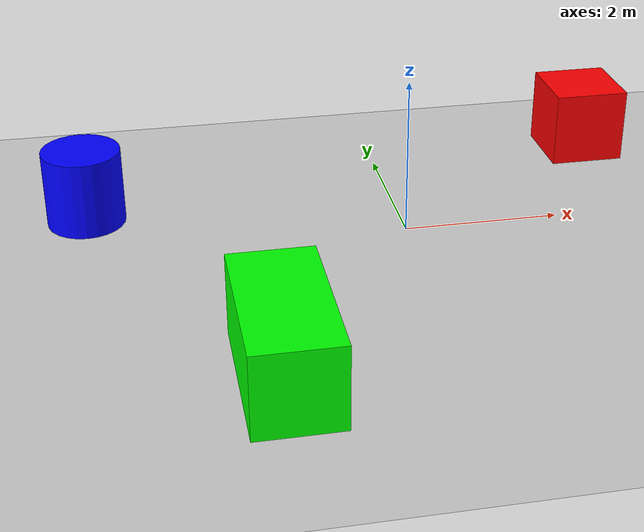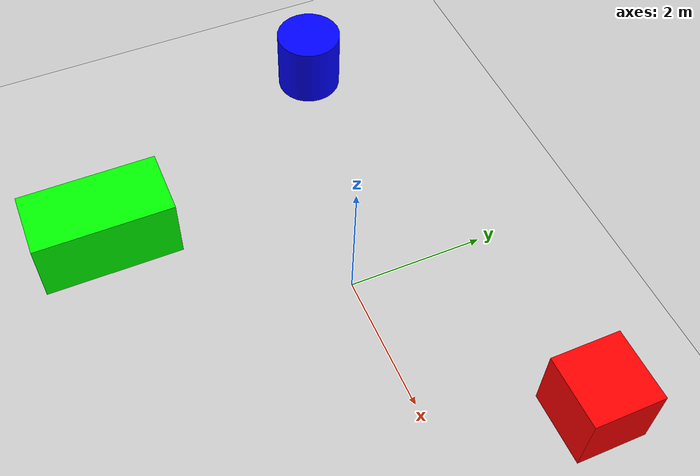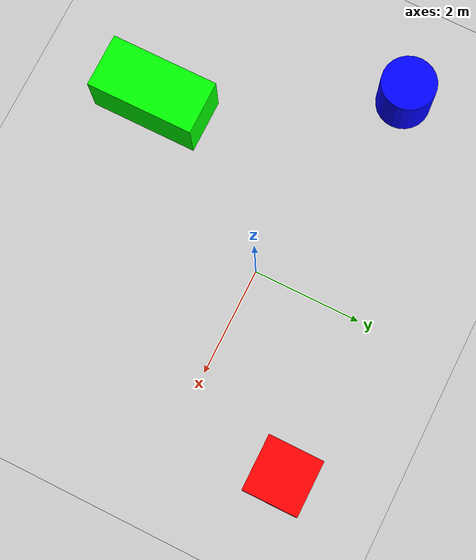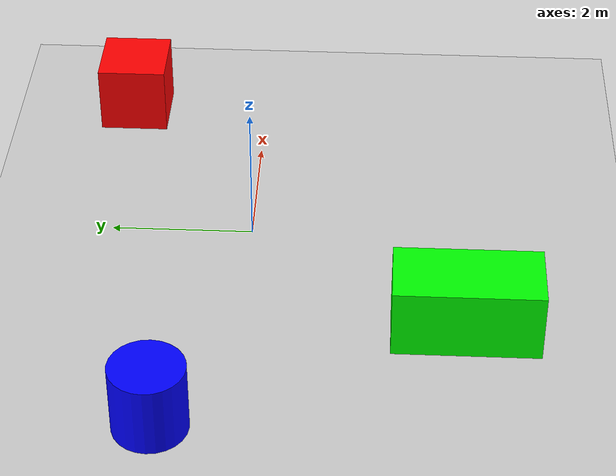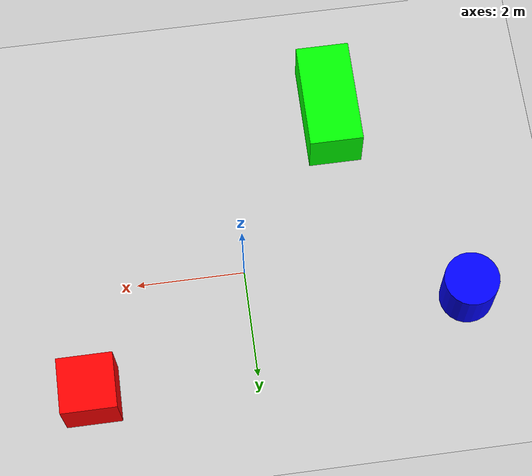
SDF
<?xml version="1.0" ?>
<sdf version="1.9">
  <world name="simple_lidar_world">

    <!-- Physics -->
    <physics name="1ms" type="ignored">
      <max_step_size>0.001</max_step_size>
      <real_time_factor>1.0</real_time_factor>
    </physics>

    <!-- Plugins -->
    <plugin filename="gz-sim-physics-system" name="gz::sim::systems::Physics"></plugin>
    <plugin filename="gz-sim-user-commands-system" name="gz::sim::systems::UserCommands"></plugin>
    <plugin filename="gz-sim-scene-broadcaster-system" name="gz::sim::systems::SceneBroadcaster"></plugin>
    <plugin filename="gz-sim-sensors-system" name="gz::sim::systems::Sensors">
      <render_engine>ogre2</render_engine>
    </plugin>

    <!-- GUI -->
    <gui fullscreen="0">
      <plugin filename="MinimalScene" name="3D View">
        <gz-gui>
          <title>3D View</title>
          <property type="bool" key="showTitleBar">false</property>
          <property type="string" key="state">docked</property>
        </gz-gui>
        <engine>ogre2</engine>
        <scene>scene</scene>
        <ambient_light>0.4 0.4 0.4</ambient_light>
        <background_color>0.8 0.8 0.8</background_color>
        <camera_pose>-6 0 6 0 0.5 0</camera_pose>
      </plugin>

      <plugin filename="EntityContextMenuPlugin" name="Entity context menu">
        <gz-gui>
          <property key="state" type="string">floating</property>
          <property key="width" type="double">5</property>
          <property key="height" type="double">5</property>
          <property key="showTitleBar" type="bool">false</property>
        </gz-gui>
      </plugin>

      <plugin filename="GzSceneManager" name="Scene Manager">
        <gz-gui>
          <property key="resizable" type="bool">false</property>
          <property key="width" type="double">5</property>
          <property key="height" type="double">5</property>
          <property key="state" type="string">floating</property>
          <property key="showTitleBar" type="bool">false</property>
        </gz-gui>
      </plugin>
    </gui>

    <!-- Lighting -->
    <light type="directional" name="sun">
      <cast_shadows>true</cast_shadows>
      <pose>0 0 10 0 0 0</pose>
      <diffuse>0.8 0.8 0.8 1</diffuse>
      <specular>0.2 0.2 0.2 1</specular>
      <attenuation>
        <range>1000</range>
        <constant>0.9</constant>
        <linear>0.01</linear>
        <quadratic>0.001</quadratic>
      </attenuation>
      <direction>-0.5 0.1 -0.9</direction>
    </light>

    <!-- Ground Plane -->
    <model name="ground_plane">
      <static>true</static>
      <link name="link">
        <collision name="collision">
          <geometry>
            <plane>
              <normal>0 0 1</normal>
              <size>100 100</size>
            </plane>
          </geometry>
        </collision>
        <visual name="visual">
          <geometry>
            <plane>
              <normal>0 0 1</normal>
              <size>100 100</size>
            </plane>
          </geometry>
          <material>
            <ambient>0.8 0.8 0.8 1</ambient>
            <diffuse>0.8 0.8 0.8 1</diffuse>
            <specular>0.8 0.8 0.8 1</specular>
          </material>
        </visual>
      </link>
    </model>

    <!-- Some obstacles for the LiDAR to detect -->
    <model name="red_box">
      <pose>3 2 0.5 0 0 0</pose>
      <static>true</static>
      <link name="box_link">
        <collision name="box_collision">
          <geometry>
            <box>
              <size>1 1 1</size>
            </box>
          </geometry>
        </collision>
        <visual name="box_visual">
          <geometry>
            <box>
              <size>1 1 1</size>
            </box>
          </geometry>
          <material>
            <ambient>1 0 0 1</ambient>
            <diffuse>1 0 0 1</diffuse>
          </material>
        </visual>
      </link>
    </model>

    <model name="green_box">
      <pose>-2 -3 0.5 0 0 0</pose>
      <static>True</static>
      <link name="box_link">
        <collision name="box_collision">
          <geometry>
            <box>
              <size>1 2 1</size>
            </box>
          </geometry>
        </collision>
        <visual name="box_visual">
          <geometry>
            <box>
              <size>1 2 1</size>
            </box>
          </geometry>
          <material>
            <ambient>0 1 0 1</ambient>
            <diffuse>0 1 0 1</diffuse>
          </material>
        </visual>
      </link>
    </model>

    <model name="blue_cylinder">
      <pose>-4 1 0.5 0 0 0</pose>
      <static>true</static>
      <link name="cylinder_link">
        <collision name="cylinder_collision">
          <geometry>
            <cylinder>
              <radius>0.5</radius>
              <length>1</length>
            </cylinder>
          </geometry>
        </collision>
        <visual name="cylinder_visual">
          <geometry>
            <cylinder>
              <radius>0.5</radius>
              <length>1</length>
            </cylinder>
          </geometry>
          <material>
            <ambient>0 0 1 1</ambient>
            <diffuse>0 0 1 1</diffuse>
          </material>
        </visual>
      </link>
    </model>

  </world>
</sdf>
